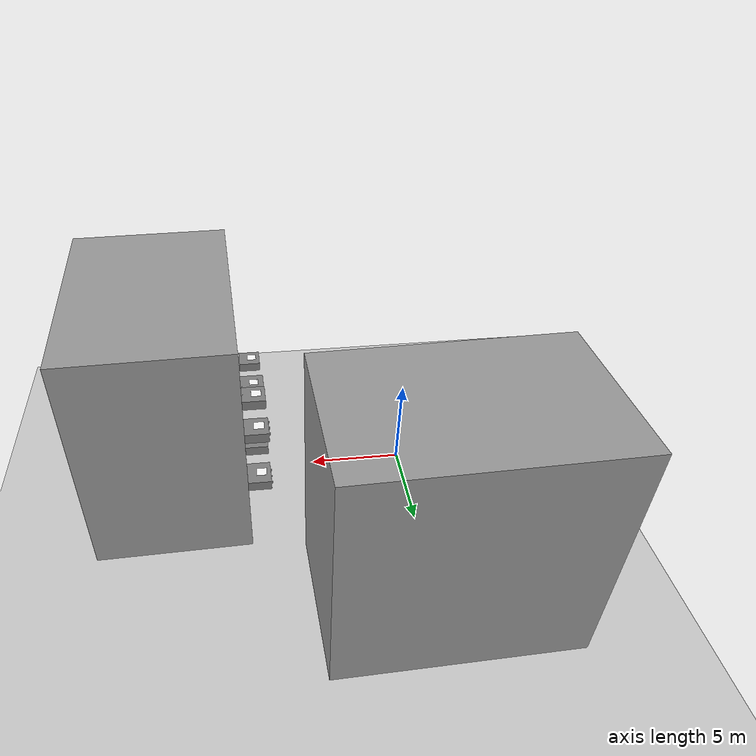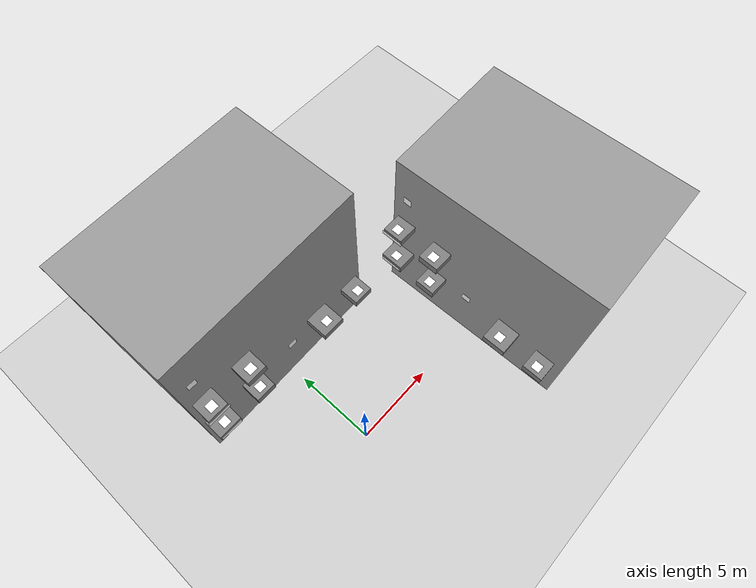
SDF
<sdf version='1.10'>
  <world name='default'>
    <physics type='ode'>
      <max_step_size>0.004</max_step_size>
      <real_time_factor>1</real_time_factor>
      <real_time_update_rate>250</real_time_update_rate>
    </physics>
    <gravity>0 0 -9.8</gravity>
    <magnetic_field>6e-06 2.3e-05 -4.2e-05</magnetic_field>
    <atmosphere type='adiabatic' />
    <scene>
      <grid>false</grid>
      <ambient>0.4 0.4 0.4 1</ambient>
      <background>0.7 0.7 0.7 1</background>
      <shadows>true</shadows>
    </scene>
    <spherical_coordinates>
      <surface_model>EARTH_WGS84</surface_model>
      <world_frame_orientation>ENU</world_frame_orientation>
      <latitude_deg>47.397971</latitude_deg>
      <longitude_deg>8.546164</longitude_deg>
      <elevation>0</elevation>
      <heading_deg>0</heading_deg>
    </spherical_coordinates>

    <model name='ground_plane'>
      <static>true</static>
      <link name='link'>
        <collision name='collision'>
          <geometry>
            <plane>
              <normal>0 0 1</normal>
              <size>1 1</size>
            </plane>
          </geometry>
        </collision>
        <visual name='visual'>
          <geometry>
            <plane>
              <normal>0 0 1</normal>
              <size>500 500</size>
            </plane>
          </geometry>
          <material>
            <ambient>0.8 0.8 0.8 1</ambient>
            <diffuse>0.8 0.8 0.8 1</diffuse>
            <specular>0.8 0.8 0.8 1</specular>
          </material>
        </visual>
      </link>
    </model>

    <model name='unified_building'>
      <static>true</static> <pose>3 0 0 0 0 -1.57</pose> <link name='main_structure_link'>
        <pose>0 10 6 0 0 -3.11686</pose> <visual name='visual'>
          <geometry><box><size>12 8 12</size></box></geometry>
          <material>
            <ambient>0.6 0.6 0.6 1</ambient>
            <diffuse>0.6 0.6 0.6 1</diffuse>
            <specular>0.2 0.2 0.2 1</specular>
          </material>
        </visual>
        <collision name='collision'>
          <geometry><box><size>12 8 12</size></box></geometry>
        </collision>
      </link>

      <include>
        <uri>model://arucotag1</uri>
        <name>arucotag_for_pid</name>
        <pose>0 5 6 1.5708 0 0</pose>
      </include>

      <link name='platform_2_1_link'>
        <pose>-5 5.3 4 0 0 0</pose> <visual name='visual'>
          <geometry><box><size>1.4 1.2 0.5</size></box></geometry>
          <material><ambient>0.5 0.5 0.5 1</ambient><diffuse>0.5 0.5 0.5 1</diffuse></material>
        </visual>
        <collision name='collision'>
          <geometry><box><size>1.4 1.4 0.5</size></box></geometry>
        </collision>
      </link>
      <include>
        <uri>model://arucotag0</uri>
        <name>arucotag_on_2_1</name>
        <pose>-5 5.15 4.3 0 0 0</pose>
      </include>
      <include>
        <uri>model://arucotag1</uri>
        <name>arucotag_on_2_1_side</name>
        <pose>-5 5.8 6.3 1.5708 0 0</pose>
      </include>
      <include>
        <uri>model://license_1</uri>
        <name>license_on_2_1_side</name>
        <pose>-5 4.65 4 1.5708 0 0</pose>
      </include>

      <link name='platform_2_2_link'>
        <pose>2.5 5.3 4 0 0 0</pose>
        <visual name='visual'>
          <geometry><box><size>1.4 1.4 0.5</size></box></geometry>
          <material><ambient>0.5 0.5 0.5 1</ambient><diffuse>0.5 0.5 0.5 1</diffuse></material>
        </visual>
        <collision name='collision'>
          <geometry><box><size>1.2 1.2 0.5</size></box></geometry>
        </collision>
      </link>
      <include>
        <uri>model://arucotag0</uri>
        <name>arucotag_on_2_2</name>
        <pose>2.5 5.15 4.3 0 0 0</pose>
      </include>

      <link name='platform_2_3_link'>
        <pose>-2.5 5.3 4 0 0 0</pose>
        <visual name='visual'>
          <geometry><box><size>1.2 1.2 0.5</size></box></geometry>
          <material><ambient>0.5 0.5 0.5 1</ambient><diffuse>0.5 0.5 0.5 1</diffuse></material>
        </visual>
        <collision name='collision'>
          <geometry><box><size>1.2 1.2 0.5</size></box></geometry>
        </collision>
      </link>
      <include>
        <uri>model://arucotag0</uri>
        <name>arucotag_on_2_3</name>
        <pose>-2.5 5.15 4.3 0 0 0</pose>
      </include>

      <link name='platform_2_4_link'>
        <pose>5 5.3 4 0 0 0</pose>
        <visual name='visual'>
          <geometry><box><size>1.2 1.2 0.5</size></box></geometry>
          <material><ambient>0.5 0.5 0.5 1</ambient><diffuse>0.5 0.5 0.5 1</diffuse></material>
        </visual>
        <collision name='collision'>
          <geometry><box><size>1.2 1.2 0.5</size></box></geometry>
        </collision>
      </link>
      <include>
        <uri>model://arucotag0</uri>
        <name>arucotag_on_2_4</name>
        <pose>5 5.15 4.3 0 0 0</pose>
      </include>

      <link name='platform_3_1_link'>
        <pose>-5 5.3 7 0 0 0</pose>
        <visual name='visual'>
          <geometry><box><size>1.2 1.2 0.5</size></box></geometry>
          <material><ambient>0.5 0.5 0.5 1</ambient><diffuse>0.5 0.5 0.5 1</diffuse></material>
        </visual>
        <collision name='collision'>
          <geometry><box><size>1.2 1.2 0.5</size></box></geometry>
        </collision>
      </link>
      <include>
        <uri>model://arucotag0</uri>
        <name>arucotag_on_3_1</name>
        <pose>-5 5.15 7.3 0 0 0</pose>
      </include>
      <include>
        <uri>model://arucotag1</uri>
        <name>arucotag_on_3_1_side</name>
        <pose>-5 5.8 9.3 1.5708 0 0</pose>
      </include>
      <include>
        <uri>model://license_2</uri>
        <name>license_on_3_1_side</name>
        <pose>-5 4.65 7 1.5708 0 0</pose>
      </include>

      <link name='platform_3_2_link'>
        <pose>-2.5 5.3 7 0 0 0</pose>
        <visual name='visual'>
          <geometry><box><size>1.2 1.2 0.5</size></box></geometry>
          <material><ambient>0.5 0.5 0.5 1</ambient><diffuse>0.5 0.5 0.5 1</diffuse></material>
        </visual>
        <collision name='collision'>
          <geometry><box><size>1.2 1.2 0.5</size></box></geometry>
        </collision>
      </link>
      <include>
        <uri>model://arucotag0</uri>
        <name>arucotag_on_3_2</name>
        <pose>-2.5 5.15 7.3 0 0 0</pose>
      </include>

    </model>

     <model name='origin_building'>
      <static>true</static> <pose>0 0 0 0 0 0</pose> <link name='main_structure_link'>
        <pose>0 10 6 0 0 -3.11686</pose> <visual name='visual'>
          <geometry><box><size>12 8 12</size></box></geometry>
          <material>
            <ambient>0.6 0.6 0.6 1</ambient>
            <diffuse>0.6 0.6 0.6 1</diffuse>
            <specular>0.2 0.2 0.2 1</specular>
          </material>
        </visual>
        <collision name='collision'>
          <geometry><box><size>12 8 12</size></box></geometry>
        </collision>
      </link>

      <include>
        <uri>model://arucotag1</uri>
        <name>arucotag_for_pid</name>
        <pose>0 5 6 1.5708 0 0</pose>
      </include>

      <link name='platform_2_1_link'>
        <pose>-5 5.3 4 0 0 0</pose> <visual name='visual'>
          <geometry><box><size>1.4 1.2 0.5</size></box></geometry>
          <material><ambient>0.5 0.5 0.5 1</ambient><diffuse>0.5 0.5 0.5 1</diffuse></material>
        </visual>
        <collision name='collision'>
          <geometry><box><size>1.4 1.4 0.5</size></box></geometry>
        </collision>
      </link>
      <include>
        <uri>model://arucotag0</uri>
        <name>arucotag_on_2_1</name>
        <pose>-5 5.15 4.3 0 0 0</pose>
      </include>
      <include>
        <uri>model://arucotag1</uri>
        <name>arucotag_on_2_1_side</name>
        <pose>-5 5.8 6.3 1.5708 0 0</pose>
      </include>
      <include>
        <uri>model://license_1</uri>
        <name>license_on_2_1_side</name>
        <pose>-5 4.65 4 1.5708 0 0</pose>
      </include>

      <link name='platform_2_2_link'>
        <pose>2.5 5.3 4 0 0 0</pose>
        <visual name='visual'>
          <geometry><box><size>1.4 1.4 0.5</size></box></geometry>
          <material><ambient>0.5 0.5 0.5 1</ambient><diffuse>0.5 0.5 0.5 1</diffuse></material>
        </visual>
        <collision name='collision'>
          <geometry><box><size>1.2 1.2 0.5</size></box></geometry>
        </collision>
      </link>
      <include>
        <uri>model://arucotag0</uri>
        <name>arucotag_on_2_2</name>
        <pose>2.5 5.15 4.3 0 0 0</pose>
      </include>

      <link name='platform_2_3_link'>
        <pose>-2.5 5.3 4 0 0 0</pose>
        <visual name='visual'>
          <geometry><box><size>1.2 1.2 0.5</size></box></geometry>
          <material><ambient>0.5 0.5 0.5 1</ambient><diffuse>0.5 0.5 0.5 1</diffuse></material>
        </visual>
        <collision name='collision'>
          <geometry><box><size>1.2 1.2 0.5</size></box></geometry>
        </collision>
      </link>
      <include>
        <uri>model://arucotag0</uri>
        <name>arucotag_on_2_3</name>
        <pose>-2.5 5.15 4.3 0 0 0</pose>
      </include>

      <link name='platform_2_4_link'>
        <pose>5 5.3 4 0 0 0</pose>
        <visual name='visual'>
          <geometry><box><size>1.2 1.2 0.5</size></box></geometry>
          <material><ambient>0.5 0.5 0.5 1</ambient><diffuse>0.5 0.5 0.5 1</diffuse></material>
        </visual>
        <collision name='collision'>
          <geometry><box><size>1.2 1.2 0.5</size></box></geometry>
        </collision>
      </link>
      <include>
        <uri>model://arucotag0</uri>
        <name>arucotag_on_2_4</name>
        <pose>5 5.15 4.3 0 0 0</pose>
      </include>

      <link name='platform_3_1_link'>
        <pose>-5 5.3 7 0 0 0</pose>
        <visual name='visual'>
          <geometry><box><size>1.2 1.2 0.5</size></box></geometry>
          <material><ambient>0.5 0.5 0.5 1</ambient><diffuse>0.5 0.5 0.5 1</diffuse></material>
        </visual>
        <collision name='collision'>
          <geometry><box><size>1.2 1.2 0.5</size></box></geometry>
        </collision>
      </link>
      <include>
        <uri>model://arucotag0</uri>
        <name>arucotag_on_3_1</name>
        <pose>-5 5.15 7.3 0 0 0</pose>
      </include>
      <include>
        <uri>model://arucotag1</uri>
        <name>arucotag_on_3_1_side</name>
        <pose>-5 5.8 9.3 1.5708 0 0</pose>
      </include>
      <include>
        <uri>model://license_2</uri>
        <name>license_on_3_1_side</name>
        <pose>-5 4.65 7 1.5708 0 0</pose>
      </include>

      <link name='platform_3_2_link'>
        <pose>-2.5 5.3 7 0 0 0</pose>
        <visual name='visual'>
          <geometry><box><size>1.2 1.2 0.5</size></box></geometry>
          <material><ambient>0.5 0.5 0.5 1</ambient><diffuse>0.5 0.5 0.5 1</diffuse></material>
        </visual>
        <collision name='collision'>
          <geometry><box><size>1.2 1.2 0.5</size></box></geometry>
        </collision>
      </link>
      <include>
        <uri>model://arucotag0</uri>
        <name>arucotag_on_3_2</name>
        <pose>-2.5 5.15 7.3 0 0 0</pose>
      </include>

    </model>

    <light name='sunUTC' type='directional'>
      <pose>0 0 500 0 0 0</pose>
      <cast_shadows>true</cast_shadows>
      <intensity>1</intensity>
      <direction>0.001 0.625 -0.78</direction>
      <diffuse>0.9 0.9 0.9 1</diffuse>
      <specular>0.27 0.27 0.27 1</specular>
    </light>
  </world>
</sdf>

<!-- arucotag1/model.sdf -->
<sdf version='1.9'>
  <model name='arucotag1'>
    <static>true</static>
    <pose>0 0 0.001 0 0 0</pose>
    <link name='base'>
      <visual name='base_visual'>
        <geometry>
          <plane>
            <normal>0 0 1</normal>
            <size>0.5 0.5</size>
          </plane>
        </geometry>
        <material>
          <diffuse>1 1 1 1</diffuse>
          <specular>0.4 0.4 0.4 1</specular>
          <pbr>
            <metal>
              <albedo_map>model://arucotag1/arucotag1.png</albedo_map>
            </metal>
          </pbr>
        </material>
      </visual>
    </link>
  </model>
</sdf>

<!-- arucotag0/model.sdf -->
<sdf version='1.9'>
  <model name='arucotag0'>
    <static>true</static>
    <pose>0 0 0.001 0 0 0</pose>
    <link name='base'>
      <visual name='base_visual'>
        <geometry>
          <plane>
            <normal>0 0 1</normal>
            <size>0.5 0.5</size>
          </plane>
        </geometry>
        <material>
          <diffuse>1 1 1 1</diffuse>
          <specular>0.4 0.4 0.4 1</specular>
          <pbr>
            <metal>
              <albedo_map>model://arucotag0/arucotag0.png</albedo_map>
            </metal>
          </pbr>
        </material>
      </visual>
    </link>
  </model>
</sdf>

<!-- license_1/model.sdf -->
<sdf version='1.9'>
  <model name='license_1'>
    <static>true</static>
    <pose>0 0 0.001 0 0 0</pose>
    <link name='base'>
      <visual name='base_visual'>
        <geometry>
          <plane>
            <normal>0 0 1</normal>
            <size>1.31 0.3</size>
          </plane>
        </geometry>
        <material>
          <diffuse>1 1 1 1</diffuse>
          <specular>0.4 0.4 0.4 1</specular>
          <pbr>
            <metal>
              <albedo_map>model://license_1/license_1.png</albedo_map>
            </metal>
          </pbr>
        </material>
      </visual>
    </link>
  </model>
</sdf>

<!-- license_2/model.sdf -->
<sdf version='1.9'>
  <model name='license_2'>
    <static>true</static>
    <pose>0 0 0.001 0 0 0</pose>
    <link name='base'>
      <visual name='base_visual'>
        <geometry>
          <plane>
            <normal>0 0 1</normal>
            <size>1.31 0.3</size>
          </plane>
        </geometry>
        <material>
          <diffuse>1 1 1 1</diffuse>
          <specular>0.4 0.4 0.4 1</specular>
          <pbr>
            <metal>
              <albedo_map>model://license_2/license_2.png</albedo_map>
            </metal>
          </pbr>
        </material>
      </visual>
    </link>
  </model>
</sdf>
